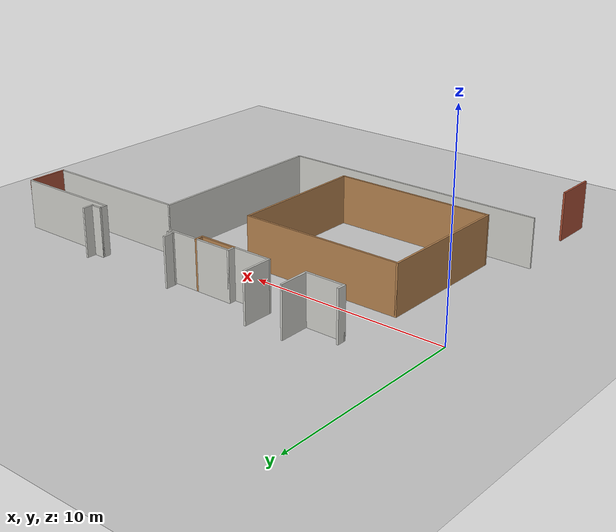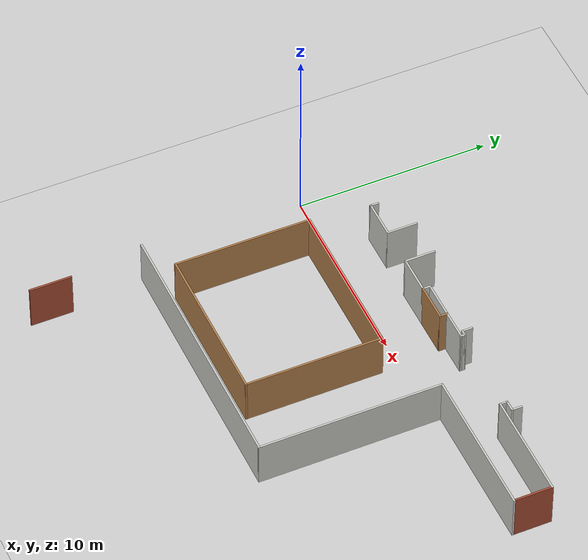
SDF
<sdf version="1.7">
 <world name="default">
  <model name="ground_plane">
   <static>1</static>
   <link name="link">
    <collision name="collision">
     <geometry><plane><normal>0 0 1</normal><size>100 100</size></plane></geometry>
     <surface><friction><ode><mu>100</mu><mu2>50</mu2></ode></friction></surface>
    </collision>
    <visual name="visual">
     <cast_shadows>0</cast_shadows>
     <geometry><plane><normal>0 0 1</normal><size>100 100</size></plane></geometry>
     <material>
      <script><uri>file://media/materials/scripts/gazebo.material</uri><name>Gazebo/Grey</name></script>
     </material>
    </visual>
   </link>
  </model>
  <model name="miraikan_5F_gate_and_elevator">
   <link name="Wall_187">
    <pose>6.57 4.955 0 0 0 -1.5708</pose>
    <visual name="Wall_187_Visual">
     <pose>0 0 1.25 0 -0 0</pose>
     <geometry><box><size>0.47 0.1 2.5</size></box></geometry>
     <material>
      <script><uri>file://media/materials/scripts/gazebo.material</uri><name>Gazebo/CeilingTiled</name></script>
      <ambient>1 1 1 1</ambient>
      <shader type="pixel"/>
     </material>
     <meta><layer>0</layer></meta>
    </visual>
    <collision name="Wall_187_Collision">
     <pose>0 0 1.25 0 -0 0</pose>
     <geometry><box><size>0.47 0.1 2.5</size></box></geometry>
     <surface>
      <friction>
       <ode><mu>1</mu><mu2>1</mu2><fdir1>0 0 0</fdir1><slip1>0</slip1><slip2>0</slip2></ode>
       <torsional>
        <coefficient>1</coefficient>
        <patch_radius>0</patch_radius>
        <surface_radius>0</surface_radius>
        <use_patch_radius>1</use_patch_radius>
        <ode><slip>0</slip></ode>
       </torsional>
      </friction>
      <bounce><restitution_coefficient>0</restitution_coefficient><threshold>1e+06</threshold></bounce>
      <contact>
       <collide_without_contact>0</collide_without_contact>
       <collide_without_contact_bitmask>1</collide_without_contact_bitmask>
       <collide_bitmask>1</collide_bitmask>
       <ode>
        <soft_cfm>0</soft_cfm>
        <soft_erp>0.2</soft_erp>
        <kp>1e+13</kp>
        <kd>1</kd>
        <max_vel>0.01</max_vel>
        <min_depth>0</min_depth>
       </ode>
       <bullet>
        <split_impulse>1</split_impulse>
        <split_impulse_penetration_threshold>-0.01</split_impulse_penetration_threshold>
        <soft_cfm>0</soft_cfm>
        <soft_erp>0.2</soft_erp>
        <kp>1e+13</kp>
        <kd>1</kd>
       </bullet>
      </contact>
     </surface>
    </collision>
   </link>
   <link name="Wall_189">
    <pose>7.55 4.77 0 0 -0 0</pose>
    <visual name="Wall_189_Visual">
     <pose>0 0 1.25 0 -0 0</pose>
     <geometry><box><size>2.06 0.1 2.5</size></box></geometry>
     <material>
      <script><uri>file://media/materials/scripts/gazebo.material</uri><name>Gazebo/CeilingTiled</name></script>
      <ambient>1 1 1 1</ambient>
      <shader type="pixel"/>
     </material>
     <meta><layer>0</layer></meta>
    </visual>
    <collision name="Wall_189_Collision">
     <pose>0 0 1.25 0 -0 0</pose>
     <geometry><box><size>2.06 0.1 2.5</size></box></geometry>
     <surface>
      <friction>
       <ode><mu>1</mu><mu2>1</mu2><fdir1>0 0 0</fdir1><slip1>0</slip1><slip2>0</slip2></ode>
       <torsional>
        <coefficient>1</coefficient>
        <patch_radius>0</patch_radius>
        <surface_radius>0</surface_radius>
        <use_patch_radius>1</use_patch_radius>
        <ode><slip>0</slip></ode>
       </torsional>
      </friction>
      <bounce><restitution_coefficient>0</restitution_coefficient><threshold>1e+06</threshold></bounce>
      <contact>
       <collide_without_contact>0</collide_without_contact>
       <collide_without_contact_bitmask>1</collide_without_contact_bitmask>
       <collide_bitmask>1</collide_bitmask>
       <ode>
        <soft_cfm>0</soft_cfm>
        <soft_erp>0.2</soft_erp>
        <kp>1e+13</kp>
        <kd>1</kd>
        <max_vel>0.01</max_vel>
        <min_depth>0</min_depth>
       </ode>
       <bullet>
        <split_impulse>1</split_impulse>
        <split_impulse_penetration_threshold>-0.01</split_impulse_penetration_threshold>
        <soft_cfm>0</soft_cfm>
        <soft_erp>0.2</soft_erp>
        <kp>1e+13</kp>
        <kd>1</kd>
       </bullet>
      </contact>
     </surface>
    </collision>
   </link>
   <link name="Wall_191">
    <pose>8.53 5.525 0 0 -0 1.5708</pose>
    <visual name="Wall_191_Visual">
     <pose>0 0 1.25 0 -0 0</pose>
     <geometry><box><size>1.61 0.1 2.5</size></box></geometry>
     <material>
      <script><uri>file://media/materials/scripts/gazebo.material</uri><name>Gazebo/CeilingTiled</name></script>
      <ambient>1 1 1 1</ambient>
      <shader type="pixel"/>
     </material>
     <meta><layer>0</layer></meta>
    </visual>
    <collision name="Wall_191_Collision">
     <pose>0 0 1.25 0 -0 0</pose>
     <geometry><box><size>1.61 0.1 2.5</size></box></geometry>
     <surface>
      <friction>
       <ode><mu>1</mu><mu2>1</mu2><fdir1>0 0 0</fdir1><slip1>0</slip1><slip2>0</slip2></ode>
       <torsional>
        <coefficient>1</coefficient>
        <patch_radius>0</patch_radius>
        <surface_radius>0</surface_radius>
        <use_patch_radius>1</use_patch_radius>
        <ode><slip>0</slip></ode>
       </torsional>
      </friction>
      <bounce><restitution_coefficient>0</restitution_coefficient><threshold>1e+06</threshold></bounce>
      <contact>
       <collide_without_contact>0</collide_without_contact>
       <collide_without_contact_bitmask>1</collide_without_contact_bitmask>
       <collide_bitmask>1</collide_bitmask>
       <ode>
        <soft_cfm>0</soft_cfm>
        <soft_erp>0.2</soft_erp>
        <kp>1e+13</kp>
        <kd>1</kd>
        <max_vel>0.01</max_vel>
        <min_depth>0</min_depth>
       </ode>
       <bullet>
        <split_impulse>1</split_impulse>
        <split_impulse_penetration_threshold>-0.01</split_impulse_penetration_threshold>
        <soft_cfm>0</soft_cfm>
        <soft_erp>0.2</soft_erp>
        <kp>1e+13</kp>
        <kd>1</kd>
       </bullet>
      </contact>
     </surface>
    </collision>
   </link>
   <link name="Wall_235">
    <pose>4.91 -11.33 0 0 -0 1.5708</pose>
    <visual name="Wall_235_Visual">
     <pose>0 0 1.25 0 -0 0</pose>
     <geometry><box><size>2.2 0.1 2.5</size></box></geometry>
     <material>
      <script><uri>file://media/materials/scripts/gazebo.material</uri><name>Gazebo/Bricks</name></script>
      <ambient>1 1 1 1</ambient>
      <shader type="pixel"/>
     </material>
     <meta><layer>0</layer></meta>
    </visual>
    <collision name="Wall_235_Collision">
     <pose>0 0 1.25 0 -0 0</pose>
     <geometry><box><size>2.2 0.1 2.5</size></box></geometry>
     <surface>
      <friction>
       <ode><mu>1</mu><mu2>1</mu2><fdir1>0 0 0</fdir1><slip1>0</slip1><slip2>0</slip2></ode>
       <torsional>
        <coefficient>1</coefficient>
        <patch_radius>0</patch_radius>
        <surface_radius>0</surface_radius>
        <use_patch_radius>1</use_patch_radius>
        <ode><slip>0</slip></ode>
       </torsional>
      </friction>
      <bounce><restitution_coefficient>0</restitution_coefficient><threshold>1e+06</threshold></bounce>
      <contact>
       <collide_without_contact>0</collide_without_contact>
       <collide_without_contact_bitmask>1</collide_without_contact_bitmask>
       <collide_bitmask>1</collide_bitmask>
       <ode>
        <soft_cfm>0</soft_cfm>
        <soft_erp>0.2</soft_erp>
        <kp>1e+13</kp>
        <kd>1</kd>
        <max_vel>0.01</max_vel>
        <min_depth>0</min_depth>
       </ode>
       <bullet>
        <split_impulse>1</split_impulse>
        <split_impulse_penetration_threshold>-0.01</split_impulse_penetration_threshold>
        <soft_cfm>0</soft_cfm>
        <soft_erp>0.2</soft_erp>
        <kp>1e+13</kp>
        <kd>1</kd>
       </bullet>
      </contact>
     </surface>
    </collision>
   </link>
   <link name="Wall_241">
    <pose>11.36 -6.38 0 0 -0 0</pose>
    <visual name="Wall_241_Visual">
     <pose>0 0 1.25 0 -0 0</pose>
     <geometry><box><size>14 0.1 2.5</size></box></geometry>
     <material>
      <script><uri>file://media/materials/scripts/gazebo.material</uri><name>Gazebo/CeilingTiled</name></script>
      <ambient>1 1 1 1</ambient>
      <shader type="pixel"/>
     </material>
     <meta><layer>0</layer></meta>
    </visual>
    <collision name="Wall_241_Collision">
     <pose>0 0 1.25 0 -0 0</pose>
     <geometry><box><size>14 0.1 2.5</size></box></geometry>
     <surface>
      <friction>
       <ode><mu>1</mu><mu2>1</mu2><fdir1>0 0 0</fdir1><slip1>0</slip1><slip2>0</slip2></ode>
       <torsional>
        <coefficient>1</coefficient>
        <patch_radius>0</patch_radius>
        <surface_radius>0</surface_radius>
        <use_patch_radius>1</use_patch_radius>
        <ode><slip>0</slip></ode>
       </torsional>
      </friction>
      <bounce><restitution_coefficient>0</restitution_coefficient><threshold>1e+06</threshold></bounce>
      <contact>
       <collide_without_contact>0</collide_without_contact>
       <collide_without_contact_bitmask>1</collide_without_contact_bitmask>
       <collide_bitmask>1</collide_bitmask>
       <ode>
        <soft_cfm>0</soft_cfm>
        <soft_erp>0.2</soft_erp>
        <kp>1e+13</kp>
        <kd>1</kd>
        <max_vel>0.01</max_vel>
        <min_depth>0</min_depth>
       </ode>
       <bullet>
        <split_impulse>1</split_impulse>
        <split_impulse_penetration_threshold>-0.01</split_impulse_penetration_threshold>
        <soft_cfm>0</soft_cfm>
        <soft_erp>0.2</soft_erp>
        <kp>1e+13</kp>
        <kd>1</kd>
       </bullet>
      </contact>
     </surface>
    </collision>
   </link>
   <link name="Wall_251">
    <pose>10.55 5.525 0 0 -0 1.5708</pose>
    <visual name="Wall_251_Visual">
     <pose>0 0 1.25 0 -0 0</pose>
     <geometry><box><size>1.61 0.1 2.5</size></box></geometry>
     <material>
      <script><uri>file://media/materials/scripts/gazebo.material</uri><name>Gazebo/CeilingTiled</name></script>
      <ambient>1 1 1 1</ambient>
      <shader type="pixel"/>
     </material>
     <meta><layer>0</layer></meta>
    </visual>
    <collision name="Wall_251_Collision">
     <pose>0 0 1.25 0 -0 0</pose>
     <geometry><box><size>1.61 0.1 2.5</size></box></geometry>
     <surface>
      <friction>
       <ode><mu>1</mu><mu2>1</mu2><fdir1>0 0 0</fdir1><slip1>0</slip1><slip2>0</slip2></ode>
       <torsional>
        <coefficient>1</coefficient>
        <patch_radius>0</patch_radius>
        <surface_radius>0</surface_radius>
        <use_patch_radius>1</use_patch_radius>
        <ode><slip>0</slip></ode>
       </torsional>
      </friction>
      <bounce><restitution_coefficient>0</restitution_coefficient><threshold>1e+06</threshold></bounce>
      <contact>
       <collide_without_contact>0</collide_without_contact>
       <collide_without_contact_bitmask>1</collide_without_contact_bitmask>
       <collide_bitmask>1</collide_bitmask>
       <ode>
        <soft_cfm>0</soft_cfm>
        <soft_erp>0.2</soft_erp>
        <kp>1e+13</kp>
        <kd>1</kd>
        <max_vel>0.01</max_vel>
        <min_depth>0</min_depth>
       </ode>
       <bullet>
        <split_impulse>1</split_impulse>
        <split_impulse_penetration_threshold>-0.01</split_impulse_penetration_threshold>
        <soft_cfm>0</soft_cfm>
        <soft_erp>0.2</soft_erp>
        <kp>1e+13</kp>
        <kd>1</kd>
       </bullet>
      </contact>
     </surface>
    </collision>
   </link>
   <link name="Wall_253">
    <pose>11.53 4.77 0 0 -0 0</pose>
    <visual name="Wall_253_Visual">
     <pose>0 0 1.25 0 -0 0</pose>
     <geometry><box><size>2.06 0.1 2.5</size></box></geometry>
     <material>
      <script><uri>file://media/materials/scripts/gazebo.material</uri><name>Gazebo/CeilingTiled</name></script>
      <ambient>1 1 1 1</ambient>
      <shader type="pixel"/>
     </material>
     <meta><layer>0</layer></meta>
    </visual>
    <collision name="Wall_253_Collision">
     <pose>0 0 1.25 0 -0 0</pose>
     <geometry><box><size>2.06 0.1 2.5</size></box></geometry>
     <surface>
      <friction>
       <ode><mu>1</mu><mu2>1</mu2><fdir1>0 0 0</fdir1><slip1>0</slip1><slip2>0</slip2></ode>
       <torsional>
        <coefficient>1</coefficient>
        <patch_radius>0</patch_radius>
        <surface_radius>0</surface_radius>
        <use_patch_radius>1</use_patch_radius>
        <ode><slip>0</slip></ode>
       </torsional>
      </friction>
      <bounce><restitution_coefficient>0</restitution_coefficient><threshold>1e+06</threshold></bounce>
      <contact>
       <collide_without_contact>0</collide_without_contact>
       <collide_without_contact_bitmask>1</collide_without_contact_bitmask>
       <collide_bitmask>1</collide_bitmask>
       <ode>
        <soft_cfm>0</soft_cfm>
        <soft_erp>0.2</soft_erp>
        <kp>1e+13</kp>
        <kd>1</kd>
        <max_vel>0.01</max_vel>
        <min_depth>0</min_depth>
       </ode>
       <bullet>
        <split_impulse>1</split_impulse>
        <split_impulse_penetration_threshold>-0.01</split_impulse_penetration_threshold>
        <soft_cfm>0</soft_cfm>
        <soft_erp>0.2</soft_erp>
        <kp>1e+13</kp>
        <kd>1</kd>
       </bullet>
      </contact>
     </surface>
    </collision>
   </link>
   <link name="Wall_256">
    <pose>12.51 4.955 0 0 -0 1.5708</pose>
    <visual name="Wall_256_Visual">
     <pose>0 0 1.25 0 -0 0</pose>
     <geometry><box><size>0.47 0.1 2.5</size></box></geometry>
     <material>
      <script><uri>file://media/materials/scripts/gazebo.material</uri><name>Gazebo/CeilingTiled</name></script>
      <ambient>1 1 1 1</ambient>
      <shader type="pixel"/>
     </material>
     <meta><layer>0</layer></meta>
    </visual>
    <collision name="Wall_256_Collision">
     <pose>0 0 1.25 0 -0 0</pose>
     <geometry><box><size>0.47 0.1 2.5</size></box></geometry>
     <surface>
      <friction>
       <ode><mu>1</mu><mu2>1</mu2><fdir1>0 0 0</fdir1><slip1>0</slip1><slip2>0</slip2></ode>
       <torsional>
        <coefficient>1</coefficient>
        <patch_radius>0</patch_radius>
        <surface_radius>0</surface_radius>
        <use_patch_radius>1</use_patch_radius>
        <ode><slip>0</slip></ode>
       </torsional>
      </friction>
      <bounce><restitution_coefficient>0</restitution_coefficient><threshold>1e+06</threshold></bounce>
      <contact>
       <collide_without_contact>0</collide_without_contact>
       <collide_without_contact_bitmask>1</collide_without_contact_bitmask>
       <collide_bitmask>1</collide_bitmask>
       <ode>
        <soft_cfm>0</soft_cfm>
        <soft_erp>0.2</soft_erp>
        <kp>1e+13</kp>
        <kd>1</kd>
        <max_vel>0.01</max_vel>
        <min_depth>0</min_depth>
       </ode>
       <bullet>
        <split_impulse>1</split_impulse>
        <split_impulse_penetration_threshold>-0.01</split_impulse_penetration_threshold>
        <soft_cfm>0</soft_cfm>
        <soft_erp>0.2</soft_erp>
        <kp>1e+13</kp>
        <kd>1</kd>
       </bullet>
      </contact>
     </surface>
    </collision>
   </link>
   <link name="Wall_258">
    <pose>14.24 5.14 0 0 -0 0</pose>
    <visual name="Wall_258_Visual">
     <pose>0 0 1.25 0 -0 0</pose>
     <geometry><box><size>3.56 0.1 2.5</size></box></geometry>
     <material>
      <script><uri>file://media/materials/scripts/gazebo.material</uri><name>Gazebo/CeilingTiled</name></script>
      <ambient>1 1 1 1</ambient>
      <shader type="pixel"/>
     </material>
     <meta><layer>0</layer></meta>
    </visual>
    <collision name="Wall_258_Collision">
     <pose>0 0 1.25 0 -0 0</pose>
     <geometry><box><size>3.56 0.1 2.5</size></box></geometry>
     <surface>
      <friction>
       <ode><mu>1</mu><mu2>1</mu2><fdir1>0 0 0</fdir1><slip1>0</slip1><slip2>0</slip2></ode>
       <torsional>
        <coefficient>1</coefficient>
        <patch_radius>0</patch_radius>
        <surface_radius>0</surface_radius>
        <use_patch_radius>1</use_patch_radius>
        <ode><slip>0</slip></ode>
       </torsional>
      </friction>
      <bounce><restitution_coefficient>0</restitution_coefficient><threshold>1e+06</threshold></bounce>
      <contact>
       <collide_without_contact>0</collide_without_contact>
       <collide_without_contact_bitmask>1</collide_without_contact_bitmask>
       <collide_bitmask>1</collide_bitmask>
       <ode>
        <soft_cfm>0</soft_cfm>
        <soft_erp>0.2</soft_erp>
        <kp>1e+13</kp>
        <kd>1</kd>
        <max_vel>0.01</max_vel>
        <min_depth>0</min_depth>
       </ode>
       <bullet>
        <split_impulse>1</split_impulse>
        <split_impulse_penetration_threshold>-0.01</split_impulse_penetration_threshold>
        <soft_cfm>0</soft_cfm>
        <soft_erp>0.2</soft_erp>
        <kp>1e+13</kp>
        <kd>1</kd>
       </bullet>
      </contact>
     </surface>
    </collision>
   </link>
   <link name="Wall_260">
    <pose>15.97 5.235 0 0 -0 1.5708</pose>
    <visual name="Wall_260_Visual">
     <pose>0 0 1.25 0 -0 0</pose>
     <geometry><box><size>0.29 0.1 2.5</size></box></geometry>
     <material>
      <script><uri>file://media/materials/scripts/gazebo.material</uri><name>Gazebo/CeilingTiled</name></script>
      <ambient>1 1 1 1</ambient>
      <shader type="pixel"/>
     </material>
     <meta><layer>0</layer></meta>
    </visual>
    <collision name="Wall_260_Collision">
     <pose>0 0 1.25 0 -0 0</pose>
     <geometry><box><size>0.29 0.1 2.5</size></box></geometry>
     <surface>
      <friction>
       <ode><mu>1</mu><mu2>1</mu2><fdir1>0 0 0</fdir1><slip1>0</slip1><slip2>0</slip2></ode>
       <torsional>
        <coefficient>1</coefficient>
        <patch_radius>0</patch_radius>
        <surface_radius>0</surface_radius>
        <use_patch_radius>1</use_patch_radius>
        <ode><slip>0</slip></ode>
       </torsional>
      </friction>
      <bounce><restitution_coefficient>0</restitution_coefficient><threshold>1e+06</threshold></bounce>
      <contact>
       <collide_without_contact>0</collide_without_contact>
       <collide_without_contact_bitmask>1</collide_without_contact_bitmask>
       <collide_bitmask>1</collide_bitmask>
       <ode>
        <soft_cfm>0</soft_cfm>
        <soft_erp>0.2</soft_erp>
        <kp>1e+13</kp>
        <kd>1</kd>
        <max_vel>0.01</max_vel>
        <min_depth>0</min_depth>
       </ode>
       <bullet>
        <split_impulse>1</split_impulse>
        <split_impulse_penetration_threshold>-0.01</split_impulse_penetration_threshold>
        <soft_cfm>0</soft_cfm>
        <soft_erp>0.2</soft_erp>
        <kp>1e+13</kp>
        <kd>1</kd>
       </bullet>
      </contact>
     </surface>
    </collision>
   </link>
   <link name="Wall_262">
    <pose>15.835 5.33 0 0 -0 3.14159</pose>
    <visual name="Wall_262_Visual">
     <pose>0 0 1.25 0 -0 0</pose>
     <geometry><box><size>0.37 0.1 2.5</size></box></geometry>
     <material>
      <script><uri>file://media/materials/scripts/gazebo.material</uri><name>Gazebo/CeilingTiled</name></script>
      <ambient>1 1 1 1</ambient>
      <shader type="pixel"/>
     </material>
     <meta><layer>0</layer></meta>
    </visual>
    <collision name="Wall_262_Collision">
     <pose>0 0 1.25 0 -0 0</pose>
     <geometry><box><size>0.37 0.1 2.5</size></box></geometry>
     <surface>
      <friction>
       <ode><mu>1</mu><mu2>1</mu2><fdir1>0 0 0</fdir1><slip1>0</slip1><slip2>0</slip2></ode>
       <torsional>
        <coefficient>1</coefficient>
        <patch_radius>0</patch_radius>
        <surface_radius>0</surface_radius>
        <use_patch_radius>1</use_patch_radius>
        <ode><slip>0</slip></ode>
       </torsional>
      </friction>
      <bounce><restitution_coefficient>0</restitution_coefficient><threshold>1e+06</threshold></bounce>
      <contact>
       <collide_without_contact>0</collide_without_contact>
       <collide_without_contact_bitmask>1</collide_without_contact_bitmask>
       <collide_bitmask>1</collide_bitmask>
       <ode>
        <soft_cfm>0</soft_cfm>
        <soft_erp>0.2</soft_erp>
        <kp>1e+13</kp>
        <kd>1</kd>
        <max_vel>0.01</max_vel>
        <min_depth>0</min_depth>
       </ode>
       <bullet>
        <split_impulse>1</split_impulse>
        <split_impulse_penetration_threshold>-0.01</split_impulse_penetration_threshold>
        <soft_cfm>0</soft_cfm>
        <soft_erp>0.2</soft_erp>
        <kp>1e+13</kp>
        <kd>1</kd>
       </bullet>
      </contact>
     </surface>
    </collision>
   </link>
   <link name="Wall_266">
    <pose>15.7 5.57 0 0 -0 1.5708</pose>
    <visual name="Wall_266_Visual">
     <pose>0 0 1.25 0 -0 0</pose>
     <geometry><box><size>0.58 0.1 2.5</size></box></geometry>
     <material>
      <script><uri>file://media/materials/scripts/gazebo.material</uri><name>Gazebo/CeilingTiled</name></script>
      <ambient>1 1 1 1</ambient>
      <shader type="pixel"/>
     </material>
     <meta><layer>0</layer></meta>
    </visual>
    <collision name="Wall_266_Collision">
     <pose>0 0 1.25 0 -0 0</pose>
     <geometry><box><size>0.58 0.1 2.5</size></box></geometry>
     <surface>
      <friction>
       <ode><mu>1</mu><mu2>1</mu2><fdir1>0 0 0</fdir1><slip1>0</slip1><slip2>0</slip2></ode>
       <torsional>
        <coefficient>1</coefficient>
        <patch_radius>0</patch_radius>
        <surface_radius>0</surface_radius>
        <use_patch_radius>1</use_patch_radius>
        <ode><slip>0</slip></ode>
       </torsional>
      </friction>
      <bounce><restitution_coefficient>0</restitution_coefficient><threshold>1e+06</threshold></bounce>
      <contact>
       <collide_without_contact>0</collide_without_contact>
       <collide_without_contact_bitmask>1</collide_without_contact_bitmask>
       <collide_bitmask>1</collide_bitmask>
       <ode>
        <soft_cfm>0</soft_cfm>
        <soft_erp>0.2</soft_erp>
        <kp>1e+13</kp>
        <kd>1</kd>
        <max_vel>0.01</max_vel>
        <min_depth>0</min_depth>
       </ode>
       <bullet>
        <split_impulse>1</split_impulse>
        <split_impulse_penetration_threshold>-0.01</split_impulse_penetration_threshold>
        <soft_cfm>0</soft_cfm>
        <soft_erp>0.2</soft_erp>
        <kp>1e+13</kp>
        <kd>1</kd>
       </bullet>
      </contact>
     </surface>
    </collision>
   </link>
   <link name="Wall_270">
    <pose>21.07 5.57 0 0 0 -1.5708</pose>
    <visual name="Wall_270_Visual">
     <pose>0 0 1.25 0 -0 0</pose>
     <geometry><box><size>0.58 0.1 2.5</size></box></geometry>
     <material>
      <script><uri>file://media/materials/scripts/gazebo.material</uri><name>Gazebo/CeilingTiled</name></script>
      <ambient>1 1 1 1</ambient>
      <shader type="pixel"/>
     </material>
     <meta><layer>0</layer></meta>
    </visual>
    <collision name="Wall_270_Collision">
     <pose>0 0 1.25 0 -0 0</pose>
     <geometry><box><size>0.58 0.1 2.5</size></box></geometry>
     <surface>
      <friction>
       <ode><mu>1</mu><mu2>1</mu2><fdir1>0 0 0</fdir1><slip1>0</slip1><slip2>0</slip2></ode>
       <torsional>
        <coefficient>1</coefficient>
        <patch_radius>0</patch_radius>
        <surface_radius>0</surface_radius>
        <use_patch_radius>1</use_patch_radius>
        <ode><slip>0</slip></ode>
       </torsional>
      </friction>
      <bounce><restitution_coefficient>0</restitution_coefficient><threshold>1e+06</threshold></bounce>
      <contact>
       <collide_without_contact>0</collide_without_contact>
       <collide_without_contact_bitmask>1</collide_without_contact_bitmask>
       <collide_bitmask>1</collide_bitmask>
       <ode>
        <soft_cfm>0</soft_cfm>
        <soft_erp>0.2</soft_erp>
        <kp>1e+13</kp>
        <kd>1</kd>
        <max_vel>0.01</max_vel>
        <min_depth>0</min_depth>
       </ode>
       <bullet>
        <split_impulse>1</split_impulse>
        <split_impulse_penetration_threshold>-0.01</split_impulse_penetration_threshold>
        <soft_cfm>0</soft_cfm>
        <soft_erp>0.2</soft_erp>
        <kp>1e+13</kp>
        <kd>1</kd>
       </bullet>
      </contact>
     </surface>
    </collision>
   </link>
   <link name="Wall_272">
    <pose>20.8 5.33 0 0 -0 3.14159</pose>
    <visual name="Wall_272_Visual">
     <pose>0 0 1.25 0 -0 0</pose>
     <geometry><box><size>0.64 0.1 2.5</size></box></geometry>
     <material>
      <script><uri>file://media/materials/scripts/gazebo.material</uri><name>Gazebo/CeilingTiled</name></script>
      <ambient>1 1 1 1</ambient>
      <shader type="pixel"/>
     </material>
     <meta><layer>0</layer></meta>
    </visual>
    <collision name="Wall_272_Collision">
     <pose>0 0 1.25 0 -0 0</pose>
     <geometry><box><size>0.64 0.1 2.5</size></box></geometry>
     <surface>
      <friction>
       <ode><mu>1</mu><mu2>1</mu2><fdir1>0 0 0</fdir1><slip1>0</slip1><slip2>0</slip2></ode>
       <torsional>
        <coefficient>1</coefficient>
        <patch_radius>0</patch_radius>
        <surface_radius>0</surface_radius>
        <use_patch_radius>1</use_patch_radius>
        <ode><slip>0</slip></ode>
       </torsional>
      </friction>
      <bounce><restitution_coefficient>0</restitution_coefficient><threshold>1e+06</threshold></bounce>
      <contact>
       <collide_without_contact>0</collide_without_contact>
       <collide_without_contact_bitmask>1</collide_without_contact_bitmask>
       <collide_bitmask>1</collide_bitmask>
       <ode>
        <soft_cfm>0</soft_cfm>
        <soft_erp>0.2</soft_erp>
        <kp>1e+13</kp>
        <kd>1</kd>
        <max_vel>0.01</max_vel>
        <min_depth>0</min_depth>
       </ode>
       <bullet>
        <split_impulse>1</split_impulse>
        <split_impulse_penetration_threshold>-0.01</split_impulse_penetration_threshold>
        <soft_cfm>0</soft_cfm>
        <soft_erp>0.2</soft_erp>
        <kp>1e+13</kp>
        <kd>1</kd>
       </bullet>
      </contact>
     </surface>
    </collision>
   </link>
   <link name="Wall_274">
    <pose>20.53 5.155 0 0 0 -1.5708</pose>
    <visual name="Wall_274_Visual">
     <pose>0 0 1.25 0 -0 0</pose>
     <geometry><box><size>0.45 0.1 2.5</size></box></geometry>
     <material>
      <script><uri>file://media/materials/scripts/gazebo.material</uri><name>Gazebo/CeilingTiled</name></script>
      <ambient>1 1 1 1</ambient>
      <shader type="pixel"/>
     </material>
     <meta><layer>0</layer></meta>
    </visual>
    <collision name="Wall_274_Collision">
     <pose>0 0 1.25 0 -0 0</pose>
     <geometry><box><size>0.45 0.1 2.5</size></box></geometry>
     <surface>
      <friction>
       <ode><mu>1</mu><mu2>1</mu2><fdir1>0 0 0</fdir1><slip1>0</slip1><slip2>0</slip2></ode>
       <torsional>
        <coefficient>1</coefficient>
        <patch_radius>0</patch_radius>
        <surface_radius>0</surface_radius>
        <use_patch_radius>1</use_patch_radius>
        <ode><slip>0</slip></ode>
       </torsional>
      </friction>
      <bounce><restitution_coefficient>0</restitution_coefficient><threshold>1e+06</threshold></bounce>
      <contact>
       <collide_without_contact>0</collide_without_contact>
       <collide_without_contact_bitmask>1</collide_without_contact_bitmask>
       <collide_bitmask>1</collide_bitmask>
       <ode>
        <soft_cfm>0</soft_cfm>
        <soft_erp>0.2</soft_erp>
        <kp>1e+13</kp>
        <kd>1</kd>
        <max_vel>0.01</max_vel>
        <min_depth>0</min_depth>
       </ode>
       <bullet>
        <split_impulse>1</split_impulse>
        <split_impulse_penetration_threshold>-0.01</split_impulse_penetration_threshold>
        <soft_cfm>0</soft_cfm>
        <soft_erp>0.2</soft_erp>
        <kp>1e+13</kp>
        <kd>1</kd>
       </bullet>
      </contact>
     </surface>
    </collision>
   </link>
   <link name="Wall_276">
    <pose>23.28 4.98 0 0 -0 0</pose>
    <visual name="Wall_276_Visual">
     <pose>0 0 1.25 0 -0 0</pose>
     <geometry><box><size>5.6 0.1 2.5</size></box></geometry>
     <material>
      <script><uri>file://media/materials/scripts/gazebo.material</uri><name>Gazebo/CeilingTiled</name></script>
      <ambient>1 1 1 1</ambient>
      <shader type="pixel"/>
     </material>
     <meta><layer>0</layer></meta>
    </visual>
    <collision name="Wall_276_Collision">
     <pose>0 0 1.25 0 -0 0</pose>
     <geometry><box><size>5.6 0.1 2.5</size></box></geometry>
     <surface>
      <friction>
       <ode><mu>1</mu><mu2>1</mu2><fdir1>0 0 0</fdir1><slip1>0</slip1><slip2>0</slip2></ode>
       <torsional>
        <coefficient>1</coefficient>
        <patch_radius>0</patch_radius>
        <surface_radius>0</surface_radius>
        <use_patch_radius>1</use_patch_radius>
        <ode><slip>0</slip></ode>
       </torsional>
      </friction>
      <bounce><restitution_coefficient>0</restitution_coefficient><threshold>1e+06</threshold></bounce>
      <contact>
       <collide_without_contact>0</collide_without_contact>
       <collide_without_contact_bitmask>1</collide_without_contact_bitmask>
       <collide_bitmask>1</collide_bitmask>
       <ode>
        <soft_cfm>0</soft_cfm>
        <soft_erp>0.2</soft_erp>
        <kp>1e+13</kp>
        <kd>1</kd>
        <max_vel>0.01</max_vel>
        <min_depth>0</min_depth>
       </ode>
       <bullet>
        <split_impulse>1</split_impulse>
        <split_impulse_penetration_threshold>-0.01</split_impulse_penetration_threshold>
        <soft_cfm>0</soft_cfm>
        <soft_erp>0.2</soft_erp>
        <kp>1e+13</kp>
        <kd>1</kd>
       </bullet>
      </contact>
     </surface>
    </collision>
   </link>
   <link name="Wall_282">
    <pose>18.31 -1.68 0 0 -0 1.5708</pose>
    <visual name="Wall_282_Visual">
     <pose>0 0 1.25 0 -0 0</pose>
     <geometry><box><size>9.5 0.1 2.5</size></box></geometry>
     <material>
      <script><uri>file://media/materials/scripts/gazebo.material</uri><name>Gazebo/CeilingTiled</name></script>
      <ambient>1 1 1 1</ambient>
      <shader type="pixel"/>
     </material>
     <meta><layer>0</layer></meta>
    </visual>
    <collision name="Wall_282_Collision">
     <pose>0 0 1.25 0 -0 0</pose>
     <geometry><box><size>9.5 0.1 2.5</size></box></geometry>
     <surface>
      <friction>
       <ode><mu>1</mu><mu2>1</mu2><fdir1>0 0 0</fdir1><slip1>0</slip1><slip2>0</slip2></ode>
       <torsional>
        <coefficient>1</coefficient>
        <patch_radius>0</patch_radius>
        <surface_radius>0</surface_radius>
        <use_patch_radius>1</use_patch_radius>
        <ode><slip>0</slip></ode>
       </torsional>
      </friction>
      <bounce><restitution_coefficient>0</restitution_coefficient><threshold>1e+06</threshold></bounce>
      <contact>
       <collide_without_contact>0</collide_without_contact>
       <collide_without_contact_bitmask>1</collide_without_contact_bitmask>
       <collide_bitmask>1</collide_bitmask>
       <ode>
        <soft_cfm>0</soft_cfm>
        <soft_erp>0.2</soft_erp>
        <kp>1e+13</kp>
        <kd>1</kd>
        <max_vel>0.01</max_vel>
        <min_depth>0</min_depth>
       </ode>
       <bullet>
        <split_impulse>1</split_impulse>
        <split_impulse_penetration_threshold>-0.01</split_impulse_penetration_threshold>
        <soft_cfm>0</soft_cfm>
        <soft_erp>0.2</soft_erp>
        <kp>1e+13</kp>
        <kd>1</kd>
       </bullet>
      </contact>
     </surface>
    </collision>
   </link>
   <link name="Wall_284">
    <pose>22.17 3.02 0 0 -0 0</pose>
    <visual name="Wall_284_Visual">
     <pose>0 0 1.25 0 -0 0</pose>
     <geometry><box><size>7.82 0.1 2.5</size></box></geometry>
     <material>
      <script><uri>file://media/materials/scripts/gazebo.material</uri><name>Gazebo/CeilingTiled</name></script>
      <ambient>1 1 1 1</ambient>
      <shader type="pixel"/>
     </material>
     <meta><layer>0</layer></meta>
    </visual>
    <collision name="Wall_284_Collision">
     <pose>0 0 1.25 0 -0 0</pose>
     <geometry><box><size>7.82 0.1 2.5</size></box></geometry>
     <surface>
      <friction>
       <ode><mu>1</mu><mu2>1</mu2><fdir1>0 0 0</fdir1><slip1>0</slip1><slip2>0</slip2></ode>
       <torsional>
        <coefficient>1</coefficient>
        <patch_radius>0</patch_radius>
        <surface_radius>0</surface_radius>
        <use_patch_radius>1</use_patch_radius>
        <ode><slip>0</slip></ode>
       </torsional>
      </friction>
      <bounce><restitution_coefficient>0</restitution_coefficient><threshold>1e+06</threshold></bounce>
      <contact>
       <collide_without_contact>0</collide_without_contact>
       <collide_without_contact_bitmask>1</collide_without_contact_bitmask>
       <collide_bitmask>1</collide_bitmask>
       <ode>
        <soft_cfm>0</soft_cfm>
        <soft_erp>0.2</soft_erp>
        <kp>1e+13</kp>
        <kd>1</kd>
        <max_vel>0.01</max_vel>
        <min_depth>0</min_depth>
       </ode>
       <bullet>
        <split_impulse>1</split_impulse>
        <split_impulse_penetration_threshold>-0.01</split_impulse_penetration_threshold>
        <soft_cfm>0</soft_cfm>
        <soft_erp>0.2</soft_erp>
        <kp>1e+13</kp>
        <kd>1</kd>
       </bullet>
      </contact>
     </surface>
    </collision>
   </link>
   <link name="Wall_286">
    <pose>6.21 -1.855 0 0 -0 1.5708</pose>
    <visual name="Wall_286_Visual">
     <pose>0 0 1.25 0 -0 0</pose>
     <geometry><box><size>7.15 0.1 2.5</size></box></geometry>
     <material>
      <script><uri>file://media/materials/scripts/gazebo.material</uri><name>Gazebo/Wood</name></script>
      <ambient>1 1 1 1</ambient>
      <shader type="pixel"/>
     </material>
     <meta><layer>0</layer></meta>
    </visual>
    <collision name="Wall_286_Collision">
     <pose>0 0 1.25 0 -0 0</pose>
     <geometry><box><size>7.15 0.1 2.5</size></box></geometry>
     <surface>
      <friction>
       <ode><mu>1</mu><mu2>1</mu2><fdir1>0 0 0</fdir1><slip1>0</slip1><slip2>0</slip2></ode>
       <torsional>
        <coefficient>1</coefficient>
        <patch_radius>0</patch_radius>
        <surface_radius>0</surface_radius>
        <use_patch_radius>1</use_patch_radius>
        <ode><slip>0</slip></ode>
       </torsional>
      </friction>
      <bounce><restitution_coefficient>0</restitution_coefficient><threshold>1e+06</threshold></bounce>
      <contact>
       <collide_without_contact>0</collide_without_contact>
       <collide_without_contact_bitmask>1</collide_without_contact_bitmask>
       <collide_bitmask>1</collide_bitmask>
       <ode>
        <soft_cfm>0</soft_cfm>
        <soft_erp>0.2</soft_erp>
        <kp>1e+13</kp>
        <kd>1</kd>
        <max_vel>0.01</max_vel>
        <min_depth>0</min_depth>
       </ode>
       <bullet>
        <split_impulse>1</split_impulse>
        <split_impulse_penetration_threshold>-0.01</split_impulse_penetration_threshold>
        <soft_cfm>0</soft_cfm>
        <soft_erp>0.2</soft_erp>
        <kp>1e+13</kp>
        <kd>1</kd>
       </bullet>
      </contact>
     </surface>
    </collision>
   </link>
   <link name="Wall_288">
    <pose>10.3755 1.67 0 0 -0 0</pose>
    <visual name="Wall_288_Visual">
     <pose>0 0 1.25 0 -0 0</pose>
     <geometry><box><size>8.431 0.1 2.5</size></box></geometry>
     <material>
      <script><uri>file://media/materials/scripts/gazebo.material</uri><name>Gazebo/Wood</name></script>
      <ambient>1 1 1 1</ambient>
      <shader type="pixel"/>
     </material>
     <meta><layer>0</layer></meta>
    </visual>
    <collision name="Wall_288_Collision">
     <pose>0 0 1.25 0 -0 0</pose>
     <geometry><box><size>8.431 0.1 2.5</size></box></geometry>
     <surface>
      <friction>
       <ode><mu>1</mu><mu2>1</mu2><fdir1>0 0 0</fdir1><slip1>0</slip1><slip2>0</slip2></ode>
       <torsional>
        <coefficient>1</coefficient>
        <patch_radius>0</patch_radius>
        <surface_radius>0</surface_radius>
        <use_patch_radius>1</use_patch_radius>
        <ode><slip>0</slip></ode>
       </torsional>
      </friction>
      <bounce><restitution_coefficient>0</restitution_coefficient><threshold>1e+06</threshold></bounce>
      <contact>
       <collide_without_contact>0</collide_without_contact>
       <collide_without_contact_bitmask>1</collide_without_contact_bitmask>
       <collide_bitmask>1</collide_bitmask>
       <ode>
        <soft_cfm>0</soft_cfm>
        <soft_erp>0.2</soft_erp>
        <kp>1e+13</kp>
        <kd>1</kd>
        <max_vel>0.01</max_vel>
        <min_depth>0</min_depth>
       </ode>
       <bullet>
        <split_impulse>1</split_impulse>
        <split_impulse_penetration_threshold>-0.01</split_impulse_penetration_threshold>
        <soft_cfm>0</soft_cfm>
        <soft_erp>0.2</soft_erp>
        <kp>1e+13</kp>
        <kd>1</kd>
       </bullet>
      </contact>
     </surface>
    </collision>
   </link>
   <link name="Wall_290">
    <pose>14.541 -1.855 0 0 0 -1.5708</pose>
    <visual name="Wall_290_Visual">
     <pose>0 0 1.25 0 -0 0</pose>
     <geometry><box><size>7.15 0.1 2.5</size></box></geometry>
     <material>
      <script><uri>file://media/materials/scripts/gazebo.material</uri><name>Gazebo/Wood</name></script>
      <ambient>1 1 1 1</ambient>
      <shader type="pixel"/>
     </material>
     <meta><layer>0</layer></meta>
    </visual>
    <collision name="Wall_290_Collision">
     <pose>0 0 1.25 0 -0 0</pose>
     <geometry><box><size>7.15 0.1 2.5</size></box></geometry>
     <surface>
      <friction>
       <ode><mu>1</mu><mu2>1</mu2><fdir1>0 0 0</fdir1><slip1>0</slip1><slip2>0</slip2></ode>
       <torsional>
        <coefficient>1</coefficient>
        <patch_radius>0</patch_radius>
        <surface_radius>0</surface_radius>
        <use_patch_radius>1</use_patch_radius>
        <ode><slip>0</slip></ode>
       </torsional>
      </friction>
      <bounce><restitution_coefficient>0</restitution_coefficient><threshold>1e+06</threshold></bounce>
      <contact>
       <collide_without_contact>0</collide_without_contact>
       <collide_without_contact_bitmask>1</collide_without_contact_bitmask>
       <collide_bitmask>1</collide_bitmask>
       <ode>
        <soft_cfm>0</soft_cfm>
        <soft_erp>0.2</soft_erp>
        <kp>1e+13</kp>
        <kd>1</kd>
        <max_vel>0.01</max_vel>
        <min_depth>0</min_depth>
       </ode>
       <bullet>
        <split_impulse>1</split_impulse>
        <split_impulse_penetration_threshold>-0.01</split_impulse_penetration_threshold>
        <soft_cfm>0</soft_cfm>
        <soft_erp>0.2</soft_erp>
        <kp>1e+13</kp>
        <kd>1</kd>
       </bullet>
      </contact>
     </surface>
    </collision>
   </link>
   <link name="Wall_294">
    <pose>10.3755 -5.38 0 0 -0 0</pose>
    <visual name="Wall_294_Visual">
     <pose>0 0 1.25 0 -0 0</pose>
     <geometry><box><size>8.431 0.1 2.5</size></box></geometry>
     <material>
      <script><uri>file://media/materials/scripts/gazebo.material</uri><name>Gazebo/Wood</name></script>
      <ambient>1 1 1 1</ambient>
      <shader type="pixel"/>
     </material>
     <meta><layer>0</layer></meta>
    </visual>
    <collision name="Wall_294_Collision">
     <pose>0 0 1.25 0 -0 0</pose>
     <geometry><box><size>8.431 0.1 2.5</size></box></geometry>
     <surface>
      <friction>
       <ode><mu>1</mu><mu2>1</mu2><fdir1>0 0 0</fdir1><slip1>0</slip1><slip2>0</slip2></ode>
       <torsional>
        <coefficient>1</coefficient>
        <patch_radius>0</patch_radius>
        <surface_radius>0</surface_radius>
        <use_patch_radius>1</use_patch_radius>
        <ode><slip>0</slip></ode>
       </torsional>
      </friction>
      <bounce><restitution_coefficient>0</restitution_coefficient><threshold>1e+06</threshold></bounce>
      <contact>
       <collide_without_contact>0</collide_without_contact>
       <collide_without_contact_bitmask>1</collide_without_contact_bitmask>
       <collide_bitmask>1</collide_bitmask>
       <ode>
        <soft_cfm>0</soft_cfm>
        <soft_erp>0.2</soft_erp>
        <kp>1e+13</kp>
        <kd>1</kd>
        <max_vel>0.01</max_vel>
        <min_depth>0</min_depth>
       </ode>
       <bullet>
        <split_impulse>1</split_impulse>
        <split_impulse_penetration_threshold>-0.01</split_impulse_penetration_threshold>
        <soft_cfm>0</soft_cfm>
        <soft_erp>0.2</soft_erp>
        <kp>1e+13</kp>
        <kd>1</kd>
       </bullet>
      </contact>
     </surface>
    </collision>
   </link>
   <link name="Wall_296">
    <pose>26.03 4.005 0 0 0 -1.5708</pose>
    <visual name="Wall_296_Visual">
     <pose>0 0 1.25 0 -0 0</pose>
     <geometry><box><size>2.05 0.1 2.5</size></box></geometry>
     <material>
      <script><uri>file://media/materials/scripts/gazebo.material</uri><name>Gazebo/Bricks</name></script>
      <ambient>1 1 1 1</ambient>
      <shader type="pixel"/>
     </material>
     <meta><layer>0</layer></meta>
    </visual>
    <collision name="Wall_296_Collision">
     <pose>0 0 1.25 0 -0 0</pose>
     <geometry><box><size>2.05 0.1 2.5</size></box></geometry>
     <surface>
      <friction>
       <ode><mu>1</mu><mu2>1</mu2><fdir1>0 0 0</fdir1><slip1>0</slip1><slip2>0</slip2></ode>
       <torsional>
        <coefficient>1</coefficient>
        <patch_radius>0</patch_radius>
        <surface_radius>0</surface_radius>
        <use_patch_radius>1</use_patch_radius>
        <ode><slip>0</slip></ode>
       </torsional>
      </friction>
      <bounce><restitution_coefficient>0</restitution_coefficient><threshold>1e+06</threshold></bounce>
      <contact>
       <collide_without_contact>0</collide_without_contact>
       <collide_without_contact_bitmask>1</collide_without_contact_bitmask>
       <collide_bitmask>1</collide_bitmask>
       <ode>
        <soft_cfm>0</soft_cfm>
        <soft_erp>0.2</soft_erp>
        <kp>1e+13</kp>
        <kd>1</kd>
        <max_vel>0.01</max_vel>
        <min_depth>0</min_depth>
       </ode>
       <bullet>
        <split_impulse>1</split_impulse>
        <split_impulse_penetration_threshold>-0.01</split_impulse_penetration_threshold>
        <soft_cfm>0</soft_cfm>
        <soft_erp>0.2</soft_erp>
        <kp>1e+13</kp>
        <kd>1</kd>
       </bullet>
      </contact>
     </surface>
    </collision>
   </link>
   <link name="Wall_298">
    <pose>13.46 4.77 0 0 -0 0</pose>
    <visual name="Wall_298_Visual">
     <pose>0 0 1.25 0 -0 0</pose>
     <geometry><box><size>2 0.1 2.5</size></box></geometry>
     <material>
      <script><uri>file://media/materials/scripts/gazebo.material</uri><name>Gazebo/Wood</name></script>
      <ambient>1 1 1 1</ambient>
      <shader type="pixel"/>
     </material>
     <meta><layer>0</layer></meta>
    </visual>
    <collision name="Wall_298_Collision">
     <pose>0 0 1.25 0 -0 0</pose>
     <geometry><box><size>2 0.1 2.5</size></box></geometry>
     <surface>
      <friction>
       <ode><mu>1</mu><mu2>1</mu2><fdir1>0 0 0</fdir1><slip1>0</slip1><slip2>0</slip2></ode>
       <torsional>
        <coefficient>1</coefficient>
        <patch_radius>0</patch_radius>
        <surface_radius>0</surface_radius>
        <use_patch_radius>1</use_patch_radius>
        <ode><slip>0</slip></ode>
       </torsional>
      </friction>
      <bounce><restitution_coefficient>0</restitution_coefficient><threshold>1e+06</threshold></bounce>
      <contact>
       <collide_without_contact>0</collide_without_contact>
       <collide_without_contact_bitmask>1</collide_without_contact_bitmask>
       <collide_bitmask>1</collide_bitmask>
       <ode>
        <soft_cfm>0</soft_cfm>
        <soft_erp>0.2</soft_erp>
        <kp>1e+13</kp>
        <kd>1</kd>
        <max_vel>0.01</max_vel>
        <min_depth>0</min_depth>
       </ode>
       <bullet>
        <split_impulse>1</split_impulse>
        <split_impulse_penetration_threshold>-0.01</split_impulse_penetration_threshold>
        <soft_cfm>0</soft_cfm>
        <soft_erp>0.2</soft_erp>
        <kp>1e+13</kp>
        <kd>1</kd>
       </bullet>
      </contact>
     </surface>
    </collision>
   </link>
   <link name="Wall_300">
    <pose>14.41 4.955 0 0 -0 1.5708</pose>
    <visual name="Wall_300_Visual">
     <pose>0 0 1.25 0 -0 0</pose>
     <geometry><box><size>0.47 0.1 2.5</size></box></geometry>
     <material>
      <script><uri>file://media/materials/scripts/gazebo.material</uri><name>Gazebo/Wood</name></script>
      <ambient>1 1 1 1</ambient>
      <shader type="pixel"/>
     </material>
     <meta><layer>0</layer></meta>
    </visual>
    <collision name="Wall_300_Collision">
     <pose>0 0 1.25 0 -0 0</pose>
     <geometry><box><size>0.47 0.1 2.5</size></box></geometry>
     <surface>
      <friction>
       <ode><mu>1</mu><mu2>1</mu2><fdir1>0 0 0</fdir1><slip1>0</slip1><slip2>0</slip2></ode>
       <torsional>
        <coefficient>1</coefficient>
        <patch_radius>0</patch_radius>
        <surface_radius>0</surface_radius>
        <use_patch_radius>1</use_patch_radius>
        <ode><slip>0</slip></ode>
       </torsional>
      </friction>
      <bounce><restitution_coefficient>0</restitution_coefficient><threshold>1e+06</threshold></bounce>
      <contact>
       <collide_without_contact>0</collide_without_contact>
       <collide_without_contact_bitmask>1</collide_without_contact_bitmask>
       <collide_bitmask>1</collide_bitmask>
       <ode>
        <soft_cfm>0</soft_cfm>
        <soft_erp>0.2</soft_erp>
        <kp>1e+13</kp>
        <kd>1</kd>
        <max_vel>0.01</max_vel>
        <min_depth>0</min_depth>
       </ode>
       <bullet>
        <split_impulse>1</split_impulse>
        <split_impulse_penetration_threshold>-0.01</split_impulse_penetration_threshold>
        <soft_cfm>0</soft_cfm>
        <soft_erp>0.2</soft_erp>
        <kp>1e+13</kp>
        <kd>1</kd>
       </bullet>
      </contact>
     </surface>
    </collision>
   </link>
   <static>1</static>
   <pose>-3.12968 -2.57927 0 0 -0 0</pose>
  </model>
 </world>
</sdf>
